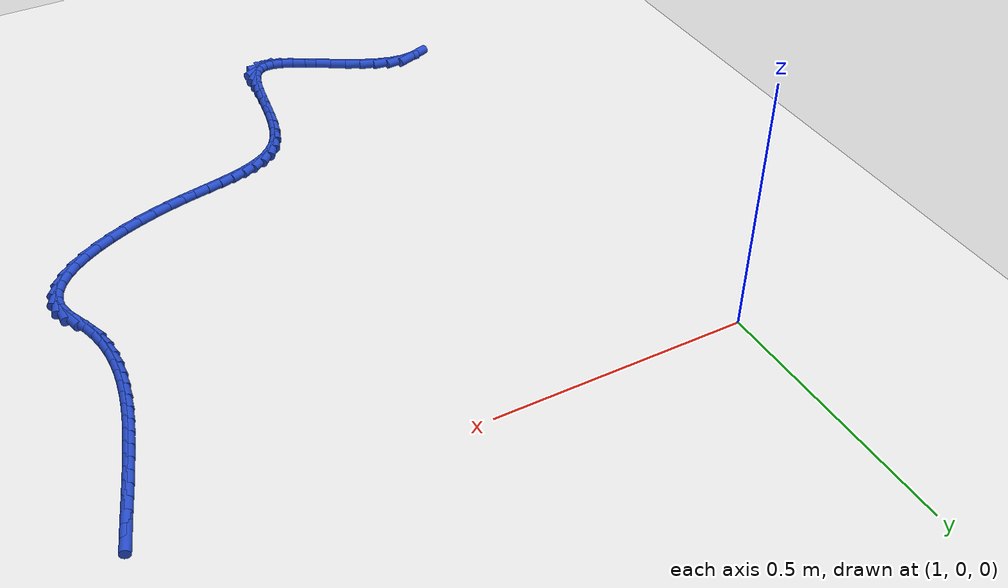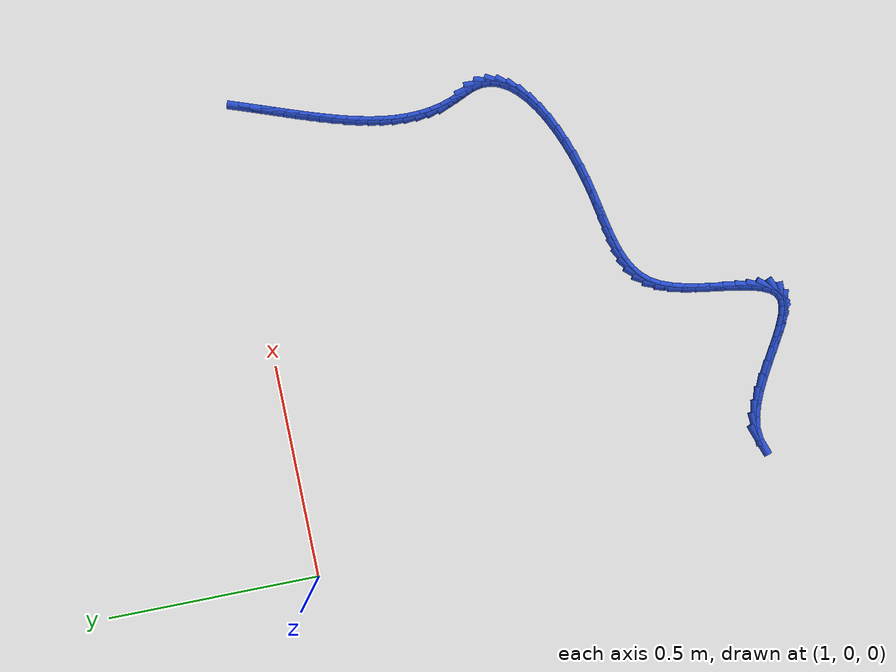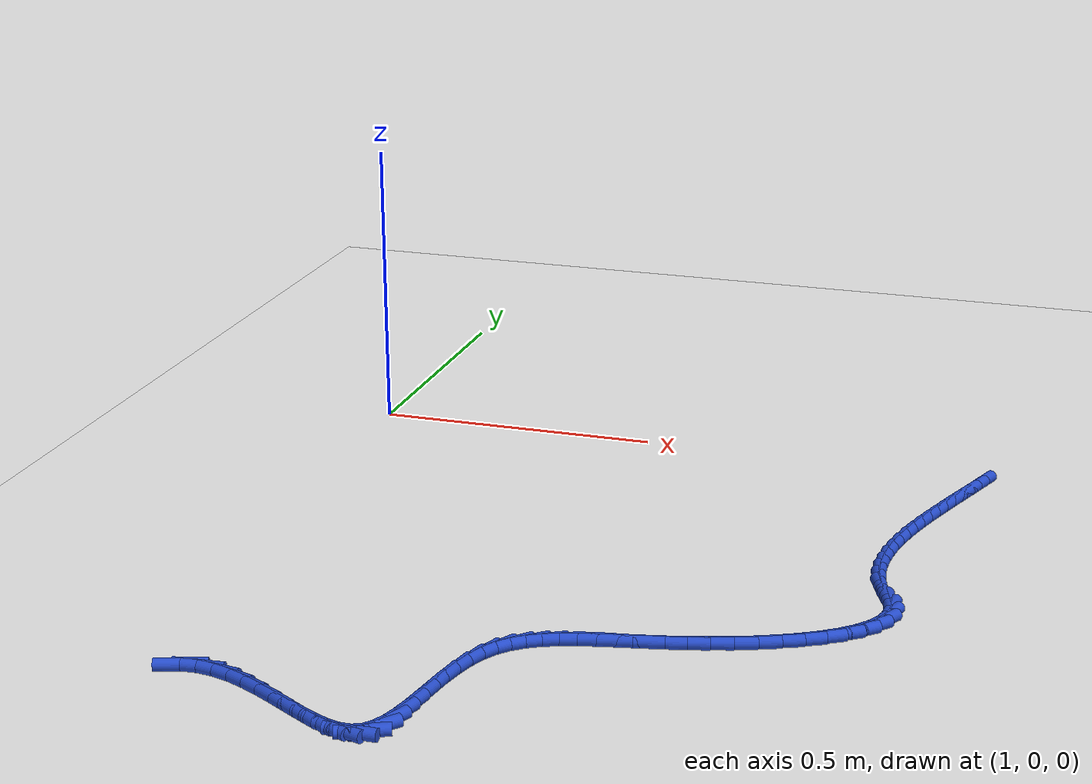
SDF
<sdf version="1.6">
 <world name="default">
  <model name="ground_plane">
   <static>1</static>
   <link name="link">
    <collision name="collision">
     <geometry><plane><normal>0 0 1</normal><size>100 100</size></plane></geometry>
     <surface><friction><ode><mu>100</mu><mu2>50</mu2></ode></friction></surface>
    </collision>
    <visual name="visual">
     <cast_shadows>0</cast_shadows>
     <geometry><plane><normal>0 0 1</normal><size>100 100</size></plane></geometry>
     <material>
      <script><uri>file://media/materials/scripts/gazebo.material</uri><name>Gazebo/WhiteGlow</name></script>
     </material>
    </visual>
   </link>
  </model>
  <model name="line">
   <link name="link_134">
    <pose>2.108033056166031 -0.04833864838464054 0.01 0 1.57 1.2323629632913295</pose>
    <collision name="collision">
     <geometry><cylinder><radius>0.01</radius><length>0.08</length></cylinder></geometry>
    </collision>
    <visual name="visual">
     <material>
      <script><name>Gazebo/Blue</name><uri>file://media/materials/scripts/gazebo.material</uri></script>
     </material>
     <geometry><cylinder><radius>0.01</radius><length>0.08</length></cylinder></geometry>
    </visual>
   </link>
   <link name="link_135">
    <pose>2.0991817473265573 -0.0734861850692177 0.01 0 1.57 1.2280609998873828</pose>
    <collision name="collision">
     <geometry><cylinder><radius>0.01</radius><length>0.08</length></cylinder></geometry>
    </collision>
    <visual name="visual">
     <material>
      <script><name>Gazebo/Blue</name><uri>file://media/materials/scripts/gazebo.material</uri></script>
     </material>
     <geometry><cylinder><radius>0.01</radius><length>0.08</length></cylinder></geometry>
    </visual>
   </link>
   <link name="link_136">
    <pose>2.090201859590187 -0.09865280003909105 0.01 0 1.57 1.2271935810883594</pose>
    <collision name="collision">
     <geometry><cylinder><radius>0.01</radius><length>0.08</length></cylinder></geometry>
    </collision>
    <visual name="visual">
     <material>
      <script><name>Gazebo/Blue</name><uri>file://media/materials/scripts/gazebo.material</uri></script>
     </material>
     <geometry><cylinder><radius>0.01</radius><length>0.08</length></cylinder></geometry>
    </visual>
   </link>
   <link name="link_137">
    <pose>2.081165733503433 -0.12390779329325516 0.01 0 1.57 1.2297256568414237</pose>
    <collision name="collision">
     <geometry><cylinder><radius>0.01</radius><length>0.08</length></cylinder></geometry>
    </collision>
    <visual name="visual">
     <material>
      <script><name>Gazebo/Blue</name><uri>file://media/materials/scripts/gazebo.material</uri></script>
     </material>
     <geometry><cylinder><radius>0.01</radius><length>0.08</length></cylinder></geometry>
    </visual>
   </link>
   <link name="link_138">
    <pose>2.0721457096128084 -0.14932046483070727 0.01 0 1.57 1.2355918784996465</pose>
    <collision name="collision">
     <geometry><cylinder><radius>0.01</radius><length>0.08</length></cylinder></geometry>
    </collision>
    <visual name="visual">
     <material>
      <script><name>Gazebo/Blue</name><uri>file://media/materials/scripts/gazebo.material</uri></script>
     </material>
     <geometry><cylinder><radius>0.01</radius><length>0.08</length></cylinder></geometry>
    </visual>
   </link>
   <link name="link_139">
    <pose>2.0632141284648258 -0.17496011465044153 0.01 0 1.57 1.2446975480054991</pose>
    <collision name="collision">
     <geometry><cylinder><radius>0.01</radius><length>0.08</length></cylinder></geometry>
    </collision>
    <visual name="visual">
     <material>
      <script><name>Gazebo/Blue</name><uri>file://media/materials/scripts/gazebo.material</uri></script>
     </material>
     <geometry><cylinder><radius>0.01</radius><length>0.08</length></cylinder></geometry>
    </visual>
   </link>
   <link name="link_140">
    <pose>2.054443330605999 -0.20089604275145448 0.01 0 1.57 1.2569286615538995</pose>
    <collision name="collision">
     <geometry><cylinder><radius>0.01</radius><length>0.08</length></cylinder></geometry>
    </collision>
    <visual name="visual">
     <material>
      <script><name>Gazebo/Blue</name><uri>file://media/materials/scripts/gazebo.material</uri></script>
     </material>
     <geometry><cylinder><radius>0.01</radius><length>0.08</length></cylinder></geometry>
    </visual>
   </link>
   <link name="link_141">
    <pose>2.0459060591260645 -0.22719715611776015 0.01 0 1.57 1.2733097158933253</pose>
    <collision name="collision">
     <geometry><cylinder><radius>0.01</radius><length>0.08</length></cylinder></geometry>
    </collision>
    <visual name="visual">
     <material>
      <script><name>Gazebo/Blue</name><uri>file://media/materials/scripts/gazebo.material</uri></script>
     </material>
     <geometry><cylinder><radius>0.01</radius><length>0.08</length></cylinder></geometry>
    </visual>
   </link>
   <link name="link_142">
    <pose>2.0377241565433306 -0.2538844244935171 0.01 0 1.57 1.2961118722053495</pose>
    <collision name="collision">
     <geometry><cylinder><radius>0.01</radius><length>0.08</length></cylinder></geometry>
    </collision>
    <visual name="visual">
     <material>
      <script><name>Gazebo/Blue</name><uri>file://media/materials/scripts/gazebo.material</uri></script>
     </material>
     <geometry><cylinder><radius>0.01</radius><length>0.08</length></cylinder></geometry>
    </visual>
   </link>
   <link name="link_143">
    <pose>2.0301150351753274 -0.2808855099710229 0.01 0 1.57 1.3258189052941438</pose>
    <collision name="collision">
     <geometry><cylinder><radius>0.01</radius><length>0.08</length></cylinder></geometry>
    </collision>
    <visual name="visual">
     <material>
      <script><name>Gazebo/Blue</name><uri>file://media/materials/scripts/gazebo.material</uri></script>
     </material>
     <geometry><cylinder><radius>0.01</radius><length>0.08</length></cylinder></geometry>
    </visual>
   </link>
   <link name="link_144">
    <pose>2.0233071172613237 -0.30811732532685837 0.01 0 1.57 1.3628036733854811</pose>
    <collision name="collision">
     <geometry><cylinder><radius>0.01</radius><length>0.08</length></cylinder></geometry>
    </collision>
    <visual name="visual">
     <material>
      <script><name>Gazebo/Blue</name><uri>file://media/materials/scripts/gazebo.material</uri></script>
     </material>
     <geometry><cylinder><radius>0.01</radius><length>0.08</length></cylinder></geometry>
    </visual>
   </link>
   <link name="link_145">
    <pose>2.0175288250405834 -0.3354967833376072 0.01 0 1.57 1.4075541340521351</pose>
    <collision name="collision">
     <geometry><cylinder><radius>0.01</radius><length>0.08</length></cylinder></geometry>
    </collision>
    <visual name="visual">
     <material>
      <script><name>Gazebo/Blue</name><uri>file://media/materials/scripts/gazebo.material</uri></script>
     </material>
     <geometry><cylinder><radius>0.01</radius><length>0.08</length></cylinder></geometry>
    </visual>
   </link>
   <link name="link_146">
    <pose>2.0130085807523774 -0.3629407967798506 0.01 0 1.57 1.4606254302872457</pose>
    <collision name="collision">
     <geometry><cylinder><radius>0.01</radius><length>0.08</length></cylinder></geometry>
    </collision>
    <visual name="visual">
     <material>
      <script><name>Gazebo/Blue</name><uri>file://media/materials/scripts/gazebo.material</uri></script>
     </material>
     <geometry><cylinder><radius>0.01</radius><length>0.08</length></cylinder></geometry>
    </visual>
   </link>
   <link name="link_147">
    <pose>2.00997480663597 -0.3903662784301722 0.01 0 1.57 1.5225652663491303</pose>
    <collision name="collision">
     <geometry><cylinder><radius>0.01</radius><length>0.08</length></cylinder></geometry>
    </collision>
    <visual name="visual">
     <material>
      <script><name>Gazebo/Blue</name><uri>file://media/materials/scripts/gazebo.material</uri></script>
     </material>
     <geometry><cylinder><radius>0.01</radius><length>0.08</length></cylinder></geometry>
    </visual>
   </link>
   <link name="link_148">
    <pose>2.008655924930631 -0.4176901410651532 0.01 0 1.57 -1.5477918243506332</pose>
    <collision name="collision">
     <geometry><cylinder><radius>0.01</radius><length>0.08</length></cylinder></geometry>
    </collision>
    <visual name="visual">
     <material>
      <script><name>Gazebo/Blue</name><uri>file://media/materials/scripts/gazebo.material</uri></script>
     </material>
     <geometry><cylinder><radius>0.01</radius><length>0.08</length></cylinder></geometry>
    </visual>
   </link>
   <link name="link_149">
    <pose>2.0092803578756255 -0.4448292974613772 0.01 0 1.57 -1.467111872465093</pose>
    <collision name="collision">
     <geometry><cylinder><radius>0.01</radius><length>0.08</length></cylinder></geometry>
    </collision>
    <visual name="visual">
     <material>
      <script><name>Gazebo/Blue</name><uri>file://media/materials/scripts/gazebo.material</uri></script>
     </material>
     <geometry><cylinder><radius>0.01</radius><length>0.08</length></cylinder></geometry>
    </visual>
   </link>
   <link name="link_150">
    <pose>2.0120765277102204 -0.4717006603954252 0.01 0 1.57 -1.3773110689113164</pose>
    <collision name="collision">
     <geometry><cylinder><radius>0.01</radius><length>0.08</length></cylinder></geometry>
    </collision>
    <visual name="visual">
     <material>
      <script><name>Gazebo/Blue</name><uri>file://media/materials/scripts/gazebo.material</uri></script>
     </material>
     <geometry><cylinder><radius>0.01</radius><length>0.08</length></cylinder></geometry>
    </visual>
   </link>
   <link name="link_151">
    <pose>2.0172728566736833 -0.49822114264388034 0.01 0 1.57 -1.2793762478932953</pose>
    <collision name="collision">
     <geometry><cylinder><radius>0.01</radius><length>0.08</length></cylinder></geometry>
    </collision>
    <visual name="visual">
     <material>
      <script><name>Gazebo/Blue</name><uri>file://media/materials/scripts/gazebo.material</uri></script>
     </material>
     <geometry><cylinder><radius>0.01</radius><length>0.08</length></cylinder></geometry>
    </visual>
   </link>
   <link name="link_152">
    <pose>2.025097767005282 -0.5243076569833258 0.01 0 1.57 -1.1794909300194272</pose>
    <collision name="collision">
     <geometry><cylinder><radius>0.01</radius><length>0.08</length></cylinder></geometry>
    </collision>
    <visual name="visual">
     <material>
      <script><name>Gazebo/Blue</name><uri>file://media/materials/scripts/gazebo.material</uri></script>
     </material>
     <geometry><cylinder><radius>0.01</radius><length>0.08</length></cylinder></geometry>
    </visual>
   </link>
   <link name="link_153">
    <pose>2.035645669541009 -0.5498732662626827 0.01 0 1.57 -1.1685049371392646</pose>
    <collision name="collision">
     <geometry><cylinder><radius>0.01</radius><length>0.08</length></cylinder></geometry>
    </collision>
    <visual name="visual">
     <material>
      <script><name>Gazebo/Blue</name><uri>file://media/materials/scripts/gazebo.material</uri></script>
     </material>
     <geometry><cylinder><radius>0.01</radius><length>0.08</length></cylinder></geometry>
    </visual>
   </link>
   <link name="link_154">
    <pose>2.0462311400347866 -0.5747511732315813 0.01 0 1.57 -1.3389109661057512</pose>
    <collision name="collision">
     <geometry><cylinder><radius>0.01</radius><length>0.08</length></cylinder></geometry>
    </collision>
    <visual name="visual">
     <material>
      <script><name>Gazebo/Blue</name><uri>file://media/materials/scripts/gazebo.material</uri></script>
     </material>
     <geometry><cylinder><radius>0.01</radius><length>0.08</length></cylinder></geometry>
    </visual>
   </link>
   <link name="link_155">
    <pose>2.051888871674029 -0.5987111130825916 0.01 0 1.57 1.5358906304086835</pose>
    <collision name="collision">
     <geometry><cylinder><radius>0.01</radius><length>0.08</length></cylinder></geometry>
    </collision>
    <visual name="visual">
     <material>
      <script><name>Gazebo/Blue</name><uri>file://media/materials/scripts/gazebo.material</uri></script>
     </material>
     <geometry><cylinder><radius>0.01</radius><length>0.08</length></cylinder></geometry>
    </visual>
   </link>
   <link name="link_156">
    <pose>2.0510881103069085 -0.6216425026736145 0.01 0 1.57 1.27349517810446</pose>
    <collision name="collision">
     <geometry><cylinder><radius>0.01</radius><length>0.08</length></cylinder></geometry>
    </collision>
    <visual name="visual">
     <material>
      <script><name>Gazebo/Blue</name><uri>file://media/materials/scripts/gazebo.material</uri></script>
     </material>
     <geometry><cylinder><radius>0.01</radius><length>0.08</length></cylinder></geometry>
    </visual>
   </link>
   <link name="link_157">
    <pose>2.0443891525549756 -0.6435072542918538 0.01 0 1.57 1.0463560369437461</pose>
    <collision name="collision">
     <geometry><cylinder><radius>0.01</radius><length>0.08</length></cylinder></geometry>
    </collision>
    <visual name="visual">
     <material>
      <script><name>Gazebo/Blue</name><uri>file://media/materials/scripts/gazebo.material</uri></script>
     </material>
     <geometry><cylinder><radius>0.01</radius><length>0.08</length></cylinder></geometry>
    </visual>
   </link>
   <link name="link_158">
    <pose>2.0323794959995856 -0.6642682232648681 0.01 0 1.57 0.8646528116161366</pose>
    <collision name="collision">
     <geometry><cylinder><radius>0.01</radius><length>0.08</length></cylinder></geometry>
    </collision>
    <visual name="visual">
     <material>
      <script><name>Gazebo/Blue</name><uri>file://media/materials/scripts/gazebo.material</uri></script>
     </material>
     <geometry><cylinder><radius>0.01</radius><length>0.08</length></cylinder></geometry>
    </visual>
   </link>
   <link name="link_159">
    <pose>2.015646638222091 -0.6838882649202137 0.01 0 1.57 0.7237475933645162</pose>
    <collision name="collision">
     <geometry><cylinder><radius>0.01</radius><length>0.08</length></cylinder></geometry>
    </collision>
    <visual name="visual">
     <material>
      <script><name>Gazebo/Blue</name><uri>file://media/materials/scripts/gazebo.material</uri></script>
     </material>
     <geometry><cylinder><radius>0.01</radius><length>0.08</length></cylinder></geometry>
    </visual>
   </link>
   <link name="link_160">
    <pose>1.994778076803846 -0.702330234585449 0.01 0 1.57 0.6144274947798739</pose>
    <collision name="collision">
     <geometry><cylinder><radius>0.01</radius><length>0.08</length></cylinder></geometry>
    </collision>
    <visual name="visual">
     <material>
      <script><name>Gazebo/Blue</name><uri>file://media/materials/scripts/gazebo.material</uri></script>
     </material>
     <geometry><cylinder><radius>0.01</radius><length>0.08</length></cylinder></geometry>
    </visual>
   </link>
   <link name="link_161">
    <pose>1.9703613093262033 -0.7195569875881317 0.01 0 1.57 0.5281888307822069</pose>
    <collision name="collision">
     <geometry><cylinder><radius>0.01</radius><length>0.08</length></cylinder></geometry>
    </collision>
    <visual name="visual">
     <material>
      <script><name>Gazebo/Blue</name><uri>file://media/materials/scripts/gazebo.material</uri></script>
     </material>
     <geometry><cylinder><radius>0.01</radius><length>0.08</length></cylinder></geometry>
    </visual>
   </link>
   <link name="link_162">
    <pose>1.9429838333705183 -0.7355313792558187 0.01 0 1.57 0.45851307077619574</pose>
    <collision name="collision">
     <geometry><cylinder><radius>0.01</radius><length>0.08</length></cylinder></geometry>
    </collision>
    <visual name="visual">
     <material>
      <script><name>Gazebo/Blue</name><uri>file://media/materials/scripts/gazebo.material</uri></script>
     </material>
     <geometry><cylinder><radius>0.01</radius><length>0.08</length></cylinder></geometry>
    </visual>
   </link>
   <link name="link_163">
    <pose>1.913233146518143 -0.7502162649160682 0.01 0 1.57 0.40066853291208354</pose>
    <collision name="collision">
     <geometry><cylinder><radius>0.01</radius><length>0.08</length></cylinder></geometry>
    </collision>
    <visual name="visual">
     <material>
      <script><name>Gazebo/Blue</name><uri>file://media/materials/scripts/gazebo.material</uri></script>
     </material>
     <geometry><cylinder><radius>0.01</radius><length>0.08</length></cylinder></geometry>
    </visual>
   </link>
   <link name="link_164">
    <pose>1.881696746350432 -0.7635744998964367 0.01 0 1.57 0.35122253986039725</pose>
    <collision name="collision">
     <geometry><cylinder><radius>0.01</radius><length>0.08</length></cylinder></geometry>
    </collision>
    <visual name="visual">
     <material>
      <script><name>Gazebo/Blue</name><uri>file://media/materials/scripts/gazebo.material</uri></script>
     </material>
     <geometry><cylinder><radius>0.01</radius><length>0.08</length></cylinder></geometry>
    </visual>
   </link>
   <link name="link_165">
    <pose>1.8489621304487371 -0.7755689395244827 0.01 0 1.57 0.3076066698996941</pose>
    <collision name="collision">
     <geometry><cylinder><radius>0.01</radius><length>0.08</length></cylinder></geometry>
    </collision>
    <visual name="visual">
     <material>
      <script><name>Gazebo/Blue</name><uri>file://media/materials/scripts/gazebo.material</uri></script>
     </material>
     <geometry><cylinder><radius>0.01</radius><length>0.08</length></cylinder></geometry>
    </visual>
   </link>
   <link name="link_166">
    <pose>1.8156167963944145 -0.7861624391277631 0.01 0 1.57 0.267782767718608</pose>
    <collision name="collision">
     <geometry><cylinder><radius>0.01</radius><length>0.08</length></cylinder></geometry>
    </collision>
    <visual name="visual">
     <material>
      <script><name>Gazebo/Blue</name><uri>file://media/materials/scripts/gazebo.material</uri></script>
     </material>
     <geometry><cylinder><radius>0.01</radius><length>0.08</length></cylinder></geometry>
    </visual>
   </link>
   <link name="link_167">
    <pose>1.7822482417688155 -0.7953178540338359 0.01 0 1.57 0.230597063961449</pose>
    <collision name="collision">
     <geometry><cylinder><radius>0.01</radius><length>0.08</length></cylinder></geometry>
    </collision>
    <visual name="visual">
     <material>
      <script><name>Gazebo/Blue</name><uri>file://media/materials/scripts/gazebo.material</uri></script>
     </material>
     <geometry><cylinder><radius>0.01</radius><length>0.08</length></cylinder></geometry>
    </visual>
   </link>
   <link name="link_168">
    <pose>1.7494296469854045 -0.803022782104617 0.01 0 1.57 0.20354881135330152</pose>
    <collision name="collision">
     <geometry><cylinder><radius>0.01</radius><length>0.08</length></cylinder></geometry>
    </collision>
    <visual name="visual">
     <material>
      <script><name>Gazebo/Blue</name><uri>file://media/materials/scripts/gazebo.material</uri></script>
     </material>
     <geometry><cylinder><radius>0.01</radius><length>0.08</length></cylinder></geometry>
    </visual>
   </link>
   <link name="link_169">
    <pose>1.717536963848816 -0.8096056662397759 0.01 0 1.57 0.1939684059241654</pose>
    <collision name="collision">
     <geometry><cylinder><radius>0.01</radius><length>0.08</length></cylinder></geometry>
    </collision>
    <visual name="visual">
     <material>
      <script><name>Gazebo/Blue</name><uri>file://media/materials/scripts/gazebo.material</uri></script>
     </material>
     <geometry><cylinder><radius>0.01</radius><length>0.08</length></cylinder></geometry>
    </visual>
   </link>
   <link name="link_170">
    <pose>1.686802566989661 -0.8156430754480327 0.01 0 1.57 0.2040939372769002</pose>
    <collision name="collision">
     <geometry><cylinder><radius>0.01</radius><length>0.08</length></cylinder></geometry>
    </collision>
    <visual name="visual">
     <material>
      <script><name>Gazebo/Blue</name><uri>file://media/materials/scripts/gazebo.material</uri></script>
     </material>
     <geometry><cylinder><radius>0.01</radius><length>0.08</length></cylinder></geometry>
    </visual>
   </link>
   <link name="link_171">
    <pose>1.657455584369771 -0.8217171895414723 0.01 0 1.57 0.23682982162661265</pose>
    <collision name="collision">
     <geometry><cylinder><radius>0.01</radius><length>0.08</length></cylinder></geometry>
    </collision>
    <visual name="visual">
     <material>
      <script><name>Gazebo/Blue</name><uri>file://media/materials/scripts/gazebo.material</uri></script>
     </material>
     <geometry><cylinder><radius>0.01</radius><length>0.08</length></cylinder></geometry>
    </visual>
   </link>
   <link name="link_172">
    <pose>1.6297251439509781 -0.8284101883321794 0.01 0 1.57 0.29600963429957106</pose>
    <collision name="collision">
     <geometry><cylinder><radius>0.01</radius><length>0.08</length></cylinder></geometry>
    </collision>
    <visual name="visual">
     <material>
      <script><name>Gazebo/Blue</name><uri>file://media/materials/scripts/gazebo.material</uri></script>
     </material>
     <geometry><cylinder><radius>0.01</radius><length>0.08</length></cylinder></geometry>
    </visual>
   </link>
   <link name="link_173">
    <pose>1.6038403736951168 -0.8363042516322378 0.01 0 1.57 0.3860451142174535</pose>
    <collision name="collision">
     <geometry><cylinder><radius>0.01</radius><length>0.08</length></cylinder></geometry>
    </collision>
    <visual name="visual">
     <material>
      <script><name>Gazebo/Blue</name><uri>file://media/materials/scripts/gazebo.material</uri></script>
     </material>
     <geometry><cylinder><radius>0.01</radius><length>0.08</length></cylinder></geometry>
    </visual>
   </link>
   <link name="link_174">
    <pose>1.5800304015640174 -0.8459815592537323 0.01 0 1.57 0.5104651703958447</pose>
    <collision name="collision">
     <geometry><cylinder><radius>0.01</radius><length>0.08</length></cylinder></geometry>
    </collision>
    <visual name="visual">
     <material>
      <script><name>Gazebo/Blue</name><uri>file://media/materials/scripts/gazebo.material</uri></script>
     </material>
     <geometry><cylinder><radius>0.01</radius><length>0.08</length></cylinder></geometry>
    </visual>
   </link>
   <link name="link_175">
    <pose>1.5585243555195152 -0.8580242910087468 0.01 0 1.57 0.6686678273578852</pose>
    <collision name="collision">
     <geometry><cylinder><radius>0.01</radius><length>0.08</length></cylinder></geometry>
    </collision>
    <visual name="visual">
     <material>
      <script><name>Gazebo/Blue</name><uri>file://media/materials/scripts/gazebo.material</uri></script>
     </material>
     <geometry><cylinder><radius>0.01</radius><length>0.08</length></cylinder></geometry>
    </visual>
   </link>
   <link name="link_176">
    <pose>1.5395513635234401 -0.8730146267093666 0.01 0 1.57 0.85179187270693</pose>
    <collision name="collision">
     <geometry><cylinder><radius>0.01</radius><length>0.08</length></cylinder></geometry>
    </collision>
    <visual name="visual">
     <material>
      <script><name>Gazebo/Blue</name><uri>file://media/materials/scripts/gazebo.material</uri></script>
     </material>
     <geometry><cylinder><radius>0.01</radius><length>0.08</length></cylinder></geometry>
    </visual>
   </link>
   <link name="link_177">
    <pose>1.5233405535376265 -0.8915347461676747 0.01 0 1.57 1.0415559429982297</pose>
    <collision name="collision">
     <geometry><cylinder><radius>0.01</radius><length>0.08</length></cylinder></geometry>
    </collision>
    <visual name="visual">
     <material>
      <script><name>Gazebo/Blue</name><uri>file://media/materials/scripts/gazebo.material</uri></script>
     </material>
     <geometry><cylinder><radius>0.01</radius><length>0.08</length></cylinder></geometry>
    </visual>
   </link>
   <link name="link_178">
    <pose>1.5101128063140363 -0.9141502588659902 0.01 0 1.57 1.1990999951813757</pose>
    <collision name="collision">
     <geometry><cylinder><radius>0.01</radius><length>0.08</length></cylinder></geometry>
    </collision>
    <visual name="visual">
     <material>
      <script><name>Gazebo/Blue</name><uri>file://media/materials/scripts/gazebo.material</uri></script>
     </material>
     <geometry><cylinder><radius>0.01</radius><length>0.08</length></cylinder></geometry>
    </visual>
   </link>
   <link name="link_179">
    <pose>1.499747475650734 -0.9407405768526417 0.01 0 1.57 1.3037056829294278</pose>
    <collision name="collision">
     <geometry><cylinder><radius>0.01</radius><length>0.08</length></cylinder></geometry>
    </collision>
    <visual name="visual">
     <material>
      <script><name>Gazebo/Blue</name><uri>file://media/materials/scripts/gazebo.material</uri></script>
     </material>
     <geometry><cylinder><radius>0.01</radius><length>0.08</length></cylinder></geometry>
    </visual>
   </link>
   <link name="link_180">
    <pose>1.4916677649679646 -0.9702686128625124 0.01 0 1.57 1.3694278477888184</pose>
    <collision name="collision">
     <geometry><cylinder><radius>0.01</radius><length>0.08</length></cylinder></geometry>
    </collision>
    <visual name="visual">
     <material>
      <script><name>Gazebo/Blue</name><uri>file://media/materials/scripts/gazebo.material</uri></script>
     </material>
     <geometry><cylinder><radius>0.01</radius><length>0.08</length></cylinder></geometry>
    </visual>
   </link>
   <link name="link_181">
    <pose>1.4852651022433239 -1.0016334362735784 0.01 0 1.57 1.4061304233800067</pose>
    <collision name="collision">
     <geometry><cylinder><radius>0.01</radius><length>0.08</length></cylinder></geometry>
    </collision>
    <visual name="visual">
     <material>
      <script><name>Gazebo/Blue</name><uri>file://media/materials/scripts/gazebo.material</uri></script>
     </material>
     <geometry><cylinder><radius>0.01</radius><length>0.08</length></cylinder></geometry>
    </visual>
   </link>
   <link name="link_182">
    <pose>1.4799309154544062 -1.0337341164638179 0.01 0 1.57 1.4183968976392398</pose>
    <collision name="collision">
     <geometry><cylinder><radius>0.01</radius><length>0.08</length></cylinder></geometry>
    </collision>
    <visual name="visual">
     <material>
      <script><name>Gazebo/Blue</name><uri>file://media/materials/scripts/gazebo.material</uri></script>
     </material>
     <geometry><cylinder><radius>0.01</radius><length>0.08</length></cylinder></geometry>
    </visual>
   </link>
   <link name="link_183">
    <pose>1.4750566325788075 -1.0654697228112082 0.01 0 1.57 1.4063543336660573</pose>
    <collision name="collision">
     <geometry><cylinder><radius>0.01</radius><length>0.08</length></cylinder></geometry>
    </collision>
    <visual name="visual">
     <material>
      <script><name>Gazebo/Blue</name><uri>file://media/materials/scripts/gazebo.material</uri></script>
     </material>
     <geometry><cylinder><radius>0.01</radius><length>0.08</length></cylinder></geometry>
    </visual>
   </link>
   <link name="link_184">
    <pose>1.4700336815941228 -1.0957393246937261 0.01 0 1.57 1.3650964356251354</pose>
    <collision name="collision">
     <geometry><cylinder><radius>0.01</radius><length>0.08</length></cylinder></geometry>
    </collision>
    <visual name="visual">
     <material>
      <script><name>Gazebo/Blue</name><uri>file://media/materials/scripts/gazebo.material</uri></script>
     </material>
     <geometry><cylinder><radius>0.01</radius><length>0.08</length></cylinder></geometry>
    </visual>
   </link>
   <link name="link_185">
    <pose>1.4642534904779472 -1.12344199148935 0.01 0 1.57 1.2818009672569433</pose>
    <collision name="collision">
     <geometry><cylinder><radius>0.01</radius><length>0.08</length></cylinder></geometry>
    </collision>
    <visual name="visual">
     <material>
      <script><name>Gazebo/Blue</name><uri>file://media/materials/scripts/gazebo.material</uri></script>
     </material>
     <geometry><cylinder><radius>0.01</radius><length>0.08</length></cylinder></geometry>
    </visual>
   </link>
   <link name="link_186">
    <pose>1.457107487207877 -1.1474767925760563 0.01 0 1.57 1.1286601586571223</pose>
    <collision name="collision">
     <geometry><cylinder><radius>0.01</radius><length>0.08</length></cylinder></geometry>
    </collision>
    <visual name="visual">
     <material>
      <script><name>Gazebo/Blue</name><uri>file://media/materials/scripts/gazebo.material</uri></script>
     </material>
     <geometry><cylinder><radius>0.01</radius><length>0.08</length></cylinder></geometry>
    </visual>
   </link>
   <link name="link_187">
    <pose>1.4479870997615054 -1.1667427973318225 0.01 0 1.57 0.8527447533470606</pose>
    <collision name="collision">
     <geometry><cylinder><radius>0.01</radius><length>0.08</length></cylinder></geometry>
    </collision>
    <visual name="visual">
     <material>
      <script><name>Gazebo/Blue</name><uri>file://media/materials/scripts/gazebo.material</uri></script>
     </material>
     <geometry><cylinder><radius>0.01</radius><length>0.08</length></cylinder></geometry>
    </visual>
   </link>
   <link name="link_188">
    <pose>1.4362837561164294 -1.1801390751346257 0.01 0 1.57 0.41276207181153884</pose>
    <collision name="collision">
     <geometry><cylinder><radius>0.01</radius><length>0.08</length></cylinder></geometry>
    </collision>
    <visual name="visual">
     <material>
      <script><name>Gazebo/Blue</name><uri>file://media/materials/scripts/gazebo.material</uri></script>
     </material>
     <geometry><cylinder><radius>0.01</radius><length>0.08</length></cylinder></geometry>
    </visual>
   </link>
   <link name="link_189">
    <pose>1.4214253447375103 -1.186645855771077 0.01 0 1.57 -0.010450456206515142</pose>
    <collision name="collision">
     <geometry><cylinder><radius>0.01</radius><length>0.08</length></cylinder></geometry>
    </collision>
    <visual name="visual">
     <material>
      <script><name>Gazebo/Blue</name><uri>file://media/materials/scripts/gazebo.material</uri></script>
     </material>
     <geometry><cylinder><radius>0.01</radius><length>0.08</length></cylinder></geometry>
    </visual>
   </link>
   <link name="link_190">
    <pose>1.403385109301963 -1.1864573202172022 0.01 0 1.57 -0.2695885500885893</pose>
    <collision name="collision">
     <geometry><cylinder><radius>0.01</radius><length>0.08</length></cylinder></geometry>
    </collision>
    <visual name="visual">
     <material>
      <script><name>Gazebo/Blue</name><uri>file://media/materials/scripts/gazebo.material</uri></script>
     </material>
     <geometry><cylinder><radius>0.01</radius><length>0.08</length></cylinder></geometry>
    </visual>
   </link>
   <link name="link_191">
    <pose>1.3825560058700093 -1.180701921892063 0.01 0 1.57 -0.4129007924401824</pose>
    <collision name="collision">
     <geometry><cylinder><radius>0.01</radius><length>0.08</length></cylinder></geometry>
    </collision>
    <visual name="visual">
     <material>
      <script><name>Gazebo/Blue</name><uri>file://media/materials/scripts/gazebo.material</uri></script>
     </material>
     <geometry><cylinder><radius>0.01</radius><length>0.08</length></cylinder></geometry>
    </visual>
   </link>
   <link name="link_192">
    <pose>1.3593417810061252 -1.170532133688955 0.01 0 1.57 -0.4897735143349751</pose>
    <collision name="collision">
     <geometry><cylinder><radius>0.01</radius><length>0.08</length></cylinder></geometry>
    </collision>
    <visual name="visual">
     <material>
      <script><name>Gazebo/Blue</name><uri>file://media/materials/scripts/gazebo.material</uri></script>
     </material>
     <geometry><cylinder><radius>0.01</radius><length>0.08</length></cylinder></geometry>
    </visual>
   </link>
   <link name="link_193">
    <pose>1.3341461812747857 -1.157100428501173 0.01 0 1.57 -0.525938027916295</pose>
    <collision name="collision">
     <geometry><cylinder><radius>0.01</radius><length>0.08</length></cylinder></geometry>
    </collision>
    <visual name="visual">
     <material>
      <script><name>Gazebo/Blue</name><uri>file://media/materials/scripts/gazebo.material</uri></script>
     </material>
     <geometry><cylinder><radius>0.01</radius><length>0.08</length></cylinder></geometry>
    </visual>
   </link>
   <link name="link_194">
    <pose>1.3073729532404628 -1.1415592792220102 0.01 0 1.57 -0.5332816012439834</pose>
    <collision name="collision">
     <geometry><cylinder><radius>0.01</radius><length>0.08</length></cylinder></geometry>
    </collision>
    <visual name="visual">
     <material>
      <script><name>Gazebo/Blue</name><uri>file://media/materials/scripts/gazebo.material</uri></script>
     </material>
     <geometry><cylinder><radius>0.01</radius><length>0.08</length></cylinder></geometry>
    </visual>
   </link>
   <link name="link_195">
    <pose>1.2794258434676336 -1.1250611587447625 0.01 0 1.57 -0.5163265861337175</pose>
    <collision name="collision">
     <geometry><cylinder><radius>0.01</radius><length>0.08</length></cylinder></geometry>
    </collision>
    <visual name="visual">
     <material>
      <script><name>Gazebo/Blue</name><uri>file://media/materials/scripts/gazebo.material</uri></script>
     </material>
     <geometry><cylinder><radius>0.01</radius><length>0.08</length></cylinder></geometry>
    </visual>
   </link>
   <link name="link_196">
    <pose>1.250708598520771 -1.1087585399627236 0.01 0 1.57 -0.4749386123254664</pose>
    <collision name="collision">
     <geometry><cylinder><radius>0.01</radius><length>0.08</length></cylinder></geometry>
    </collision>
    <visual name="visual">
     <material>
      <script><name>Gazebo/Blue</name><uri>file://media/materials/scripts/gazebo.material</uri></script>
     </material>
     <geometry><cylinder><radius>0.01</radius><length>0.08</length></cylinder></geometry>
    </visual>
   </link>
   <link name="link_197">
    <pose>1.2216249649643511 -1.093803895769189 0.01 0 1.57 -0.4050602634285813</pose>
    <collision name="collision">
     <geometry><cylinder><radius>0.01</radius><length>0.08</length></cylinder></geometry>
    </collision>
    <visual name="visual">
     <material>
      <script><name>Gazebo/Blue</name><uri>file://media/materials/scripts/gazebo.material</uri></script>
     </material>
     <geometry><cylinder><radius>0.01</radius><length>0.08</length></cylinder></geometry>
    </visual>
   </link>
   <link name="link_198">
    <pose>1.1925786893628472 -1.0813496990574527 0.01 0 1.57 -0.29848887943624963</pose>
    <collision name="collision">
     <geometry><cylinder><radius>0.01</radius><length>0.08</length></cylinder></geometry>
    </collision>
    <visual name="visual">
     <material>
      <script><name>Gazebo/Blue</name><uri>file://media/materials/scripts/gazebo.material</uri></script>
     </material>
     <geometry><cylinder><radius>0.01</radius><length>0.08</length></cylinder></geometry>
    </visual>
   </link>
   <link name="link_199">
    <pose>1.163973518280735 -1.0725484227208095 0.01 0 1.57 -0.14296030286827918</pose>
    <collision name="collision">
     <geometry><cylinder><radius>0.01</radius><length>0.08</length></cylinder></geometry>
    </collision>
    <visual name="visual">
     <material>
      <script><name>Gazebo/Blue</name><uri>file://media/materials/scripts/gazebo.material</uri></script>
     </material>
     <geometry><cylinder><radius>0.01</radius><length>0.08</length></cylinder></geometry>
    </visual>
   </link>
   <link name="link_200">
    <pose>1.136213198282487 -1.068552539652554 0.01 0 1.57 0.07386970547597428</pose>
    <collision name="collision">
     <geometry><cylinder><radius>0.01</radius><length>0.08</length></cylinder></geometry>
    </collision>
    <visual name="visual">
     <material>
      <script><name>Gazebo/Blue</name><uri>file://media/materials/scripts/gazebo.material</uri></script>
     </material>
     <geometry><cylinder><radius>0.01</radius><length>0.08</length></cylinder></geometry>
    </visual>
   </link>
   <link name="link_201">
    <pose>1.1097014759325812 -1.0705145227459807 0.01 0 1.57 0.3335706887711391</pose>
    <collision name="collision">
     <geometry><cylinder><radius>0.01</radius><length>0.08</length></cylinder></geometry>
    </collision>
    <visual name="visual">
     <material>
      <script><name>Gazebo/Blue</name><uri>file://media/materials/scripts/gazebo.material</uri></script>
     </material>
     <geometry><cylinder><radius>0.01</radius><length>0.08</length></cylinder></geometry>
    </visual>
   </link>
  </model>
 </world>
</sdf>
